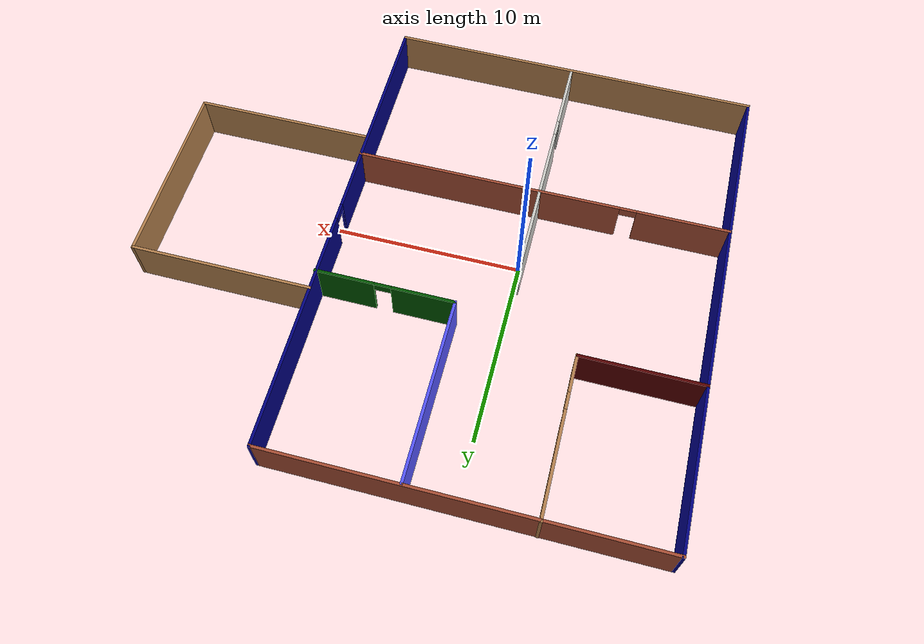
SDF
<?xml version='1.0'?>
<sdf version='1.6'>
  <model name='Walls_and_Doors_with_colors'>
    <pose frame=''>4.50975 0.631657 0 0 -0 0</pose>
    <link name='Wall_25'>
      <pose frame=''>-4.77775 -4.26666 0 0 -0 0</pose>
      <visual name='Wall_25_Visual_0'>
        <pose frame=''>-7.63868 0 1.25 0 -0 0</pose>
        <geometry>
          <box>
            <size>4.97265 0.15 2.5</size>
          </box>
        </geometry>
        <material>
          <script>
            <uri>file://media/materials/scripts/gazebo.material</uri>
            <name>Gazebo/Bricks</name>
          </script>
          <ambient>1 0 0 1</ambient>
        </material>
      </visual>
      <collision name='Wall_25_Collision_0'>
        <geometry>
          <box>
            <size>4.97265 0.15 2.5</size>
          </box>
        </geometry>
        <pose frame=''>-7.63868 0 1.25 0 -0 0</pose>
      </collision>
      <visual name='Wall_25_Visual_1'>
        <pose frame=''>2.93633 0 1.25 0 -0 0</pose>
        <geometry>
          <box>
            <size>14.3774 0.15 2.5</size>
          </box>
        </geometry>
        <material>
          <script>
            <uri>file://media/materials/scripts/gazebo.material</uri>
            <name>Gazebo/Bricks</name>
          </script>
          <ambient>1 0 0 1</ambient>
        </material>
      </visual>
      <collision name='Wall_25_Collision_1'>
        <geometry>
          <box>
            <size>14.3774 0.15 2.5</size>
          </box>
        </geometry>
        <pose frame=''>2.93633 0 1.25 0 -0 0</pose>
      </collision>
      <visual name='Wall_25_Visual_2'>
        <pose frame=''>-4.70235 0 2.25 0 -0 0</pose>
        <geometry>
          <box>
            <size>0.9 0.15 0.5</size>
          </box>
        </geometry>
        <material>
          <script>
            <uri>file://media/materials/scripts/gazebo.material</uri>
            <name>Gazebo/Bricks</name>
          </script>
          <ambient>1 0 0 1</ambient>
        </material>
      </visual>
      <collision name='Wall_25_Collision_2'>
        <geometry>
          <box>
            <size>0.9 0.15 0.5</size>
          </box>
        </geometry>
        <pose frame=''>-4.70235 0 2.25 0 -0 0</pose>
      </collision>
    </link>
    <link name='Wall_35'>
      <collision name='Wall_35_Collision'>
        <geometry>
          <box>
            <size>6.5 0.15 2.5</size>
          </box>
        </geometry>
        <pose frame=''>0 0 1.25 0 -0 0</pose>
      </collision>
      <visual name='Wall_35_Visual'>
        <pose frame=''>0 0 1.25 0 -0 0</pose>
        <geometry>
          <box>
            <size>6.5 0.15 2.5</size>
          </box>
        </geometry>
        <material>
          <script>
            <uri>file://media/materials/scripts/gazebo.material</uri>
            <name>Gazebo/Grey</name>
          </script>
          <ambient>0.333333 0 0 1</ambient>
        </material>
      </visual>
      <pose frame=''>-11.6753 4.71288 0 0 -0 3.14159</pose>
    </link>
    <link name='Wall_40'>
      <pose frame=''>-8.50029 8.88788 0 0 -0 1.5708</pose>
      <visual name='Wall_40_Visual_0'>
        <pose frame=''>-3.22212 0 1.25 0 -0 0</pose>
        <geometry>
          <box>
            <size>2.05575 0.15 2.5</size>
          </box>
        </geometry>
        <material>
          <script>
            <uri>file://media/materials/scripts/gazebo.material</uri>
            <name>Gazebo/Wood</name>
          </script>
          <ambient>1 1 1 1</ambient>
        </material>
      </visual>
      <collision name='Wall_40_Collision_0'>
        <geometry>
          <box>
            <size>2.05575 0.15 2.5</size>
          </box>
        </geometry>
        <pose frame=''>-3.22212 0 1.25 0 -0 0</pose>
      </collision>
      <visual name='Wall_40_Visual_1'>
        <pose frame=''>1.47788 0 1.25 0 -0 0</pose>
        <geometry>
          <box>
            <size>5.54425 0.15 2.5</size>
          </box>
        </geometry>
        <material>
          <script>
            <uri>file://media/materials/scripts/gazebo.material</uri>
            <name>Gazebo/Wood</name>
          </script>
          <ambient>1 1 1 1</ambient>
        </material>
      </visual>
      <collision name='Wall_40_Collision_1'>
        <geometry>
          <box>
            <size>5.54425 0.15 2.5</size>
          </box>
        </geometry>
        <pose frame=''>1.47788 0 1.25 0 -0 0</pose>
      </collision>
      <visual name='Wall_40_Visual_2'>
        <pose frame=''>-1.74425 0 2.25 0 -0 0</pose>
        <geometry>
          <box>
            <size>0.9 0.15 0.5</size>
          </box>
        </geometry>
        <material>
          <script>
            <uri>file://media/materials/scripts/gazebo.material</uri>
            <name>Gazebo/Wood</name>
          </script>
          <ambient>1 1 1 1</ambient>
        </material>
      </visual>
      <collision name='Wall_40_Collision_2'>
        <geometry>
          <box>
            <size>0.9 0.15 0.5</size>
          </box>
        </geometry>
        <pose frame=''>-1.74425 0 2.25 0 -0 0</pose>
      </collision>
    </link>
    <link name='Wall_42'>
      <collision name='Wall_42_Collision'>
        <geometry>
          <box>
            <size>9.75 0.15 2.5</size>
          </box>
        </geometry>
        <pose frame=''>0 0 1.25 0 -0 0</pose>
      </collision>
      <visual name='Wall_42_Visual'>
        <pose frame=''>0 0 1.25 0 -0 0</pose>
        <geometry>
          <box>
            <size>9.75 0.15 2.5</size>
          </box>
        </geometry>
        <material>
          <script>
            <uri>file://media/materials/scripts/gazebo.material</uri>
            <name>Gazebo/Grey</name>
          </script>
          <ambient>0.333333 0.333333 1 1</ambient>
        </material>
      </visual>
      <pose frame=''>-2.04304 8.17541 0 0 0 -1.5708</pose>
    </link>
    <link name='Wall_43'>
      <pose frame=''>1.63196 3.37541 0 0 -0 0</pose>
      <visual name='Wall_43_Visual_0'>
        <pose frame=''>-2.04527 0 1.25 0 -0 0</pose>
        <geometry>
          <box>
            <size>3.40945 0.15 2.5</size>
          </box>
        </geometry>
        <material>
          <script>
            <uri>file://media/materials/scripts/gazebo.material</uri>
            <name>Gazebo/Grey</name>
          </script>
          <ambient>0 0.333333 0 1</ambient>
        </material>
      </visual>
      <collision name='Wall_43_Collision_0'>
        <geometry>
          <box>
            <size>3.40945 0.15 2.5</size>
          </box>
        </geometry>
        <pose frame=''>-2.04527 0 1.25 0 -0 0</pose>
      </collision>
      <visual name='Wall_43_Visual_1'>
        <pose frame=''>2.15473 0 1.25 0 -0 0</pose>
        <geometry>
          <box>
            <size>3.19055 0.15 2.5</size>
          </box>
        </geometry>
        <material>
          <script>
            <uri>file://media/materials/scripts/gazebo.material</uri>
            <name>Gazebo/Grey</name>
          </script>
          <ambient>0 0.333333 0 1</ambient>
        </material>
      </visual>
      <collision name='Wall_43_Collision_1'>
        <geometry>
          <box>
            <size>3.19055 0.15 2.5</size>
          </box>
        </geometry>
        <pose frame=''>2.15473 0 1.25 0 -0 0</pose>
      </collision>
      <visual name='Wall_43_Visual_2'>
        <pose frame=''>0.109451 0 2.25 0 -0 0</pose>
        <geometry>
          <box>
            <size>0.9 0.15 0.5</size>
          </box>
        </geometry>
        <material>
          <script>
            <uri>file://media/materials/scripts/gazebo.material</uri>
            <name>Gazebo/Grey</name>
          </script>
          <ambient>0 0.333333 0 1</ambient>
        </material>
      </visual>
      <collision name='Wall_43_Collision_2'>
        <geometry>
          <box>
            <size>0.9 0.15 0.5</size>
          </box>
        </geometry>
        <pose frame=''>0.109451 0 2.25 0 -0 0</pose>
      </collision>
    </link>
    <link name='Wall_45'>
      <pose frame=''>-4.71817 -6.07667 0 0 0 -1.5708</pose>
      <visual name='Wall_45_Visual_0'>
        <pose frame=''>-2.35428 0 1.25 0 -0 0</pose>
        <geometry>
          <box>
            <size>9.04144 0.15 2.5</size>
          </box>
        </geometry>
        <material>
          <script>
            <uri>file://media/materials/scripts/gazebo.material</uri>
            <name>Gazebo/CeilingTiled</name>
          </script>
          <ambient>0.435294 0.796078 0.67451 1</ambient>
        </material>
      </visual>
      <collision name='Wall_45_Collision_0'>
        <geometry>
          <box>
            <size>9.04144 0.15 2.5</size>
          </box>
        </geometry>
        <pose frame=''>-2.35428 0 1.25 0 -0 0</pose>
      </collision>
      <visual name='Wall_45_Visual_1'>
        <pose frame=''>4.97072 0 1.25 0 -0 0</pose>
        <geometry>
          <box>
            <size>3.80856 0.15 2.5</size>
          </box>
        </geometry>
        <material>
          <script>
            <uri>file://media/materials/scripts/gazebo.material</uri>
            <name>Gazebo/CeilingTiled</name>
          </script>
          <ambient>0.435294 0.796078 0.67451 1</ambient>
        </material>
      </visual>
      <collision name='Wall_45_Collision_1'>
        <geometry>
          <box>
            <size>3.80856 0.15 2.5</size>
          </box>
        </geometry>
        <pose frame=''>4.97072 0 1.25 0 -0 0</pose>
      </collision>
      <visual name='Wall_45_Visual_2'>
        <pose frame=''>2.61644 0 2.25 0 -0 0</pose>
        <geometry>
          <box>
            <size>0.9 0.15 0.5</size>
          </box>
        </geometry>
        <material>
          <script>
            <uri>file://media/materials/scripts/gazebo.material</uri>
            <name>Gazebo/CeilingTiled</name>
          </script>
          <ambient>0.435294 0.796078 0.67451 1</ambient>
        </material>
      </visual>
      <collision name='Wall_45_Collision_2'>
        <geometry>
          <box>
            <size>0.9 0.15 0.5</size>
          </box>
        </geometry>
        <pose frame=''>2.61644 0 2.25 0 -0 0</pose>
      </collision>
    </link>
    <link name='Wall_47'>
      <collision name='Wall_47_Collision'>
        <geometry>
          <box>
            <size>9.75 0.15 2.5</size>
          </box>
        </geometry>
        <pose frame=''>0 0 1.25 0 -0 0</pose>
      </collision>
      <visual name='Wall_47_Visual'>
        <pose frame=''>0 0 1.25 0 -0 0</pose>
        <geometry>
          <box>
            <size>9.75 0.15 2.5</size>
          </box>
        </geometry>
        <material>
          <script>
            <uri>file://media/materials/scripts/gazebo.material</uri>
            <name>Gazebo/Wood</name>
          </script>
          <ambient>1 1 1 1</ambient>
        </material>
      </visual>
      <pose frame=''>10.0505 -5.4312 0 0 -0 0</pose>
    </link>
    <link name='Wall_48'>
      <collision name='Wall_48_Collision'>
        <geometry>
          <box>
            <size>10 0.15 2.5</size>
          </box>
        </geometry>
        <pose frame=''>0 0 1.25 0 -0 0</pose>
      </collision>
      <visual name='Wall_48_Visual'>
        <pose frame=''>0 0 1.25 0 -0 0</pose>
        <geometry>
          <box>
            <size>10 0.15 2.5</size>
          </box>
        </geometry>
        <material>
          <script>
            <uri>file://media/materials/scripts/gazebo.material</uri>
            <name>Gazebo/Wood</name>
          </script>
          <ambient>1 1 1 1</ambient>
        </material>
      </visual>
      <pose frame=''>14.8505 -0.506197 0 0 -0 1.5708</pose>
    </link>
    <link name='Wall_49'>
      <collision name='Wall_49_Collision'>
        <geometry>
          <box>
            <size>9.75 0.15 2.5</size>
          </box>
        </geometry>
        <pose frame=''>0 0 1.25 0 -0 0</pose>
      </collision>
      <visual name='Wall_49_Visual'>
        <pose frame=''>0 0 1.25 0 -0 0</pose>
        <geometry>
          <box>
            <size>9.75 0.15 2.5</size>
          </box>
        </geometry>
        <material>
          <script>
            <uri>file://media/materials/scripts/gazebo.material</uri>
            <name>Gazebo/Wood</name>
          </script>
          <ambient>1 1 1 1</ambient>
        </material>
      </visual>
      <pose frame=''>10.0505 4.4188 0 0 -0 3.14159</pose>
    </link>
    <link name='Wall_6'>
      <collision name='Wall_6_Collision'>
        <geometry>
          <box>
            <size>20.25 0.15 2.5</size>
          </box>
        </geometry>
        <pose frame=''>0 0 1.25 0 -0 0</pose>
      </collision>
      <visual name='Wall_6_Visual'>
        <pose frame=''>0 0 1.25 0 -0 0</pose>
        <geometry>
          <box>
            <size>20.25 0.15 2.5</size>
          </box>
        </geometry>
        <material>
          <script>
            <uri>file://media/materials/scripts/gazebo.material</uri>
            <name>Gazebo/Wood</name>
          </script>
          <ambient>1 1 1 1</ambient>
        </material>
      </visual>
      <pose frame=''>-4.80024 -12.9916 0 0 0 -0.00704</pose>
    </link>
    <link name='Wall_7'>
      <pose frame=''>5.24976 -0.012355 0 0 -0 1.5708</pose>
      <visual name='Wall_7_Visual_0'>
        <pose frame=''>-6.95468 0 1.25 0 -0 0</pose>
        <geometry>
          <box>
            <size>12.3406 0.15 2.5</size>
          </box>
        </geometry>
        <material>
          <script>
            <uri>file://media/materials/scripts/gazebo.material</uri>
            <name>Gazebo/Grey</name>
          </script>
          <ambient>0 0 0.498039 1</ambient>
        </material>
      </visual>
      <collision name='Wall_7_Collision_0'>
        <geometry>
          <box>
            <size>12.3406 0.15 2.5</size>
          </box>
        </geometry>
        <pose frame=''>-6.95468 0 1.25 0 -0 0</pose>
      </collision>
      <visual name='Wall_7_Visual_1'>
        <pose frame=''>6.62032 0 1.25 0 -0 0</pose>
        <geometry>
          <box>
            <size>13.0094 0.15 2.5</size>
          </box>
        </geometry>
        <material>
          <script>
            <uri>file://media/materials/scripts/gazebo.material</uri>
            <name>Gazebo/Grey</name>
          </script>
          <ambient>0 0 0.498039 1</ambient>
        </material>
      </visual>
      <collision name='Wall_7_Collision_1'>
        <geometry>
          <box>
            <size>13.0094 0.15 2.5</size>
          </box>
        </geometry>
        <pose frame=''>6.62032 0 1.25 0 -0 0</pose>
      </collision>
      <visual name='Wall_7_Visual_2'>
        <pose frame=''>-0.33436 0 2.25 0 -0 0</pose>
        <geometry>
          <box>
            <size>0.9 0.15 0.5</size>
          </box>
        </geometry>
        <material>
          <script>
            <uri>file://media/materials/scripts/gazebo.material</uri>
            <name>Gazebo/Grey</name>
          </script>
          <ambient>0 0 0.498039 1</ambient>
        </material>
      </visual>
      <collision name='Wall_7_Collision_2'>
        <geometry>
          <box>
            <size>0.9 0.15 0.5</size>
          </box>
        </geometry>
        <pose frame=''>-0.33436 0 2.25 0 -0 0</pose>
      </collision>
    </link>
    <link name='Wall_8'>
      <collision name='Wall_8_Collision'>
        <geometry>
          <box>
            <size>20.25 0.15 2.5</size>
          </box>
        </geometry>
        <pose frame=''>0 0 1.25 0 -0 0</pose>
      </collision>
      <visual name='Wall_8_Visual'>
        <pose frame=''>0 0 1.25 0 -0 0</pose>
        <geometry>
          <box>
            <size>20.25 0.15 2.5</size>
          </box>
        </geometry>
        <material>
          <script>
            <uri>file://media/materials/scripts/gazebo.material</uri>
            <name>Gazebo/Bricks</name>
          </script>
          <ambient>1 1 1 1</ambient>
        </material>
      </visual>
      <pose frame=''>-4.80024 13.0376 0 0 -0 3.14159</pose>
    </link>
    <link name='Wall_9'>
      <collision name='Wall_9_Collision'>
        <geometry>
          <box>
            <size>26.1085 0.15 2.5</size>
          </box>
        </geometry>
        <pose frame=''>0 0 1.25 0 -0 0</pose>
      </collision>
      <visual name='Wall_9_Visual'>
        <pose frame=''>0 0 1.25 0 -0 0</pose>
        <geometry>
          <box>
            <size>26.1085 0.15 2.5</size>
          </box>
        </geometry>
        <material>
          <script>
            <uri>file://media/materials/scripts/gazebo.material</uri>
            <name>Gazebo/Grey</name>
          </script>
          <ambient>0 0 0.498039 1</ambient>
        </material>
      </visual>
      <pose frame=''>-14.8502 0.058402 0 0 0 -1.5708</pose>
    </link>
    <static>1</static>
  </model>
</sdf>
